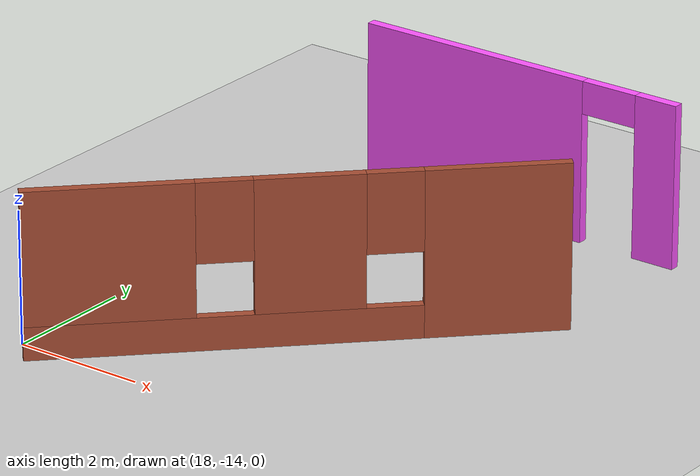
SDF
<sdf version="1.6">
 <world name="default">
  <model name="ground_plane">
   <static>1</static>
   <link name="link">
    <collision name="collision">
     <geometry><plane><normal>0 0 1</normal><size>100 100</size></plane></geometry>
     <surface><friction><ode><mu>100</mu><mu2>50</mu2></ode></friction></surface>
    </collision>
    <visual name="visual">
     <cast_shadows>0</cast_shadows>
     <geometry><plane><normal>0 0 1</normal><size>100 100</size></plane></geometry>
     <material>
      <script><uri>file://media/materials/scripts/gazebo.material</uri><name>Gazebo/Grey</name></script>
     </material>
    </visual>
   </link>
  </model>
  <model name="spiral_office">
   <link name="Wall_100">
    <pose>20.9892 -6.43138 0 0 -0 3.14159</pose>
    <visual name="Wall_100_Visual_0">
     <pose>-2.35489 0 1.25 0 -0 0</pose>
     <geometry><box><size>0.689225 0.15 2.5</size></box></geometry>
     <material>
      <script><uri>file://media/materials/scripts/gazebo.material</uri><name>Gazebo/Grey</name></script>
      <ambient>1 0.333333 1 1</ambient>
     </material>
     <meta><layer>0</layer></meta>
    </visual>
    <collision name="Wall_100_Collision_0">
     <geometry><box><size>0.689225 0.15 2.5</size></box></geometry>
     <pose>-2.35489 0 1.25 0 -0 0</pose>
    </collision>
    <visual name="Wall_100_Visual_1">
     <pose>0.794612 0 1.25 0 -0 0</pose>
     <geometry><box><size>3.80978 0.15 2.5</size></box></geometry>
     <material>
      <script><uri>file://media/materials/scripts/gazebo.material</uri><name>Gazebo/Grey</name></script>
      <ambient>1 0.333333 1 1</ambient>
     </material>
     <meta><layer>0</layer></meta>
    </visual>
    <collision name="Wall_100_Collision_1">
     <geometry><box><size>3.80978 0.15 2.5</size></box></geometry>
     <pose>0.794612 0 1.25 0 -0 0</pose>
    </collision>
    <visual name="Wall_100_Visual_2">
     <pose>-1.56028 0 2.25 0 -0 0</pose>
     <geometry><box><size>0.9 0.15 0.5</size></box></geometry>
     <material>
      <script><uri>file://media/materials/scripts/gazebo.material</uri><name>Gazebo/Grey</name></script>
      <ambient>1 0.333333 1 1</ambient>
     </material>
     <meta><layer>0</layer></meta>
    </visual>
    <collision name="Wall_100_Collision_2">
     <geometry><box><size>0.9 0.15 0.5</size></box></geometry>
     <pose>-1.56028 0 2.25 0 -0 0</pose>
    </collision>
   </link>
   <link name="Wall_18">
    <pose>20.99 -11.6749 0 0 0 -2.35616</pose>
    <visual name="Wall_18_Visual_0">
     <pose>-2.76411 0 1.25 0 -0 0</pose>
     <geometry><box><size>2.04759 0.15 2.5</size></box></geometry>
     <material>
      <script><uri>file://media/materials/scripts/gazebo.material</uri><name>Gazebo/Bricks</name></script>
      <ambient>1 1 1 1</ambient>
     </material>
     <meta><layer>0</layer></meta>
    </visual>
    <collision name="Wall_18_Collision_0">
     <geometry><box><size>2.04759 0.15 2.5</size></box></geometry>
     <pose>-2.76411 0 1.25 0 -0 0</pose>
    </collision>
    <visual name="Wall_18_Visual_1">
     <pose>1.02379 0 0.25 0 -0 0</pose>
     <geometry><box><size>5.52823 0.15 0.5</size></box></geometry>
     <material>
      <script><uri>file://media/materials/scripts/gazebo.material</uri><name>Gazebo/Bricks</name></script>
      <ambient>1 1 1 1</ambient>
     </material>
     <meta><layer>0</layer></meta>
    </visual>
    <collision name="Wall_18_Collision_1">
     <geometry><box><size>5.52823 0.15 0.5</size></box></geometry>
     <pose>1.02379 0 0.25 0 -0 0</pose>
    </collision>
    <visual name="Wall_18_Visual_2">
     <pose>-0.167532 0 1.5 0 -0 0</pose>
     <geometry><box><size>1.54558 0.15 2</size></box></geometry>
     <material>
      <script><uri>file://media/materials/scripts/gazebo.material</uri><name>Gazebo/Bricks</name></script>
      <ambient>1 1 1 1</ambient>
     </material>
     <meta><layer>0</layer></meta>
    </visual>
    <collision name="Wall_18_Collision_2">
     <geometry><box><size>1.54558 0.15 2</size></box></geometry>
     <pose>-0.167532 0 1.5 0 -0 0</pose>
    </collision>
    <visual name="Wall_18_Visual_3">
     <pose>2.59658 0 1.5 0 -0 0</pose>
     <geometry><box><size>2.38265 0.15 2</size></box></geometry>
     <material>
      <script><uri>file://media/materials/scripts/gazebo.material</uri><name>Gazebo/Bricks</name></script>
      <ambient>1 1 1 1</ambient>
     </material>
     <meta><layer>0</layer></meta>
    </visual>
    <collision name="Wall_18_Collision_3">
     <geometry><box><size>2.38265 0.15 2</size></box></geometry>
     <pose>2.59658 0 1.5 0 -0 0</pose>
    </collision>
    <visual name="Wall_18_Visual_4">
     <pose>-1.34032 0 1.9 0 -0 0</pose>
     <geometry><box><size>0.8 0.15 1.2</size></box></geometry>
     <material>
      <script><uri>file://media/materials/scripts/gazebo.material</uri><name>Gazebo/Bricks</name></script>
      <ambient>1 1 1 1</ambient>
     </material>
     <meta><layer>0</layer></meta>
    </visual>
    <collision name="Wall_18_Collision_4">
     <geometry><box><size>0.8 0.15 1.2</size></box></geometry>
     <pose>-1.34032 0 1.9 0 -0 0</pose>
    </collision>
    <visual name="Wall_18_Visual_5">
     <pose>1.00526 0 1.9 0 -0 0</pose>
     <geometry><box><size>0.8 0.15 1.2</size></box></geometry>
     <material>
      <script><uri>file://media/materials/scripts/gazebo.material</uri><name>Gazebo/Bricks</name></script>
      <ambient>1 1 1 1</ambient>
     </material>
     <meta><layer>0</layer></meta>
    </visual>
    <collision name="Wall_18_Collision_5">
     <geometry><box><size>0.8 0.15 1.2</size></box></geometry>
     <pose>1.00526 0 1.9 0 -0 0</pose>
    </collision>
   </link>
   <static>1</static>
  </model>
 </world>
</sdf>
